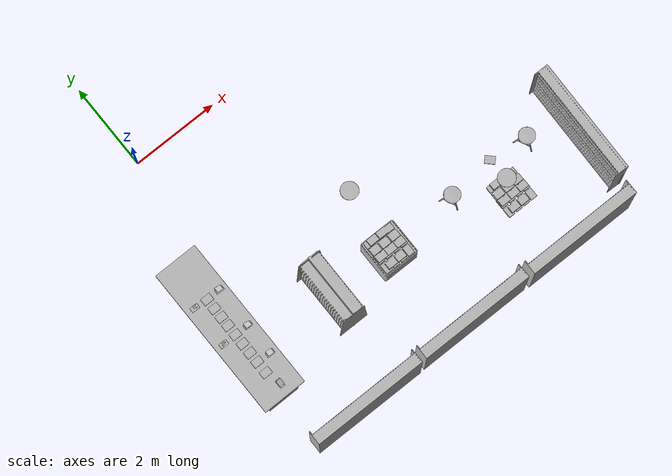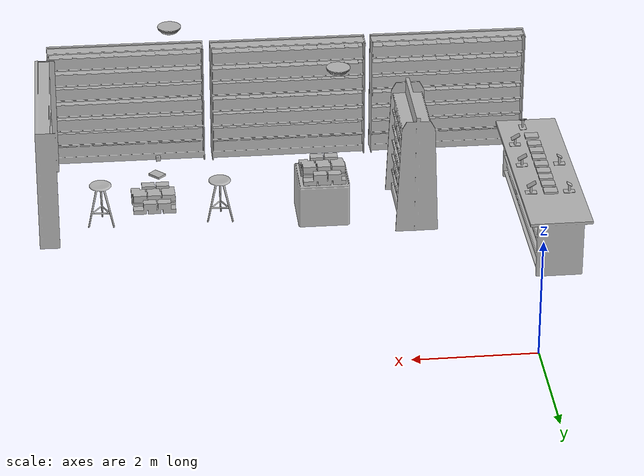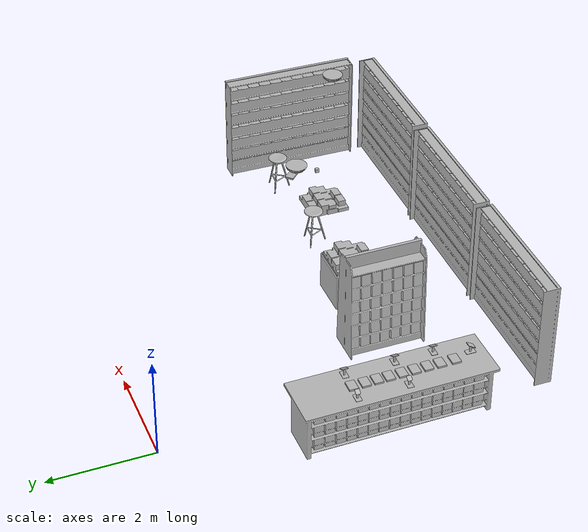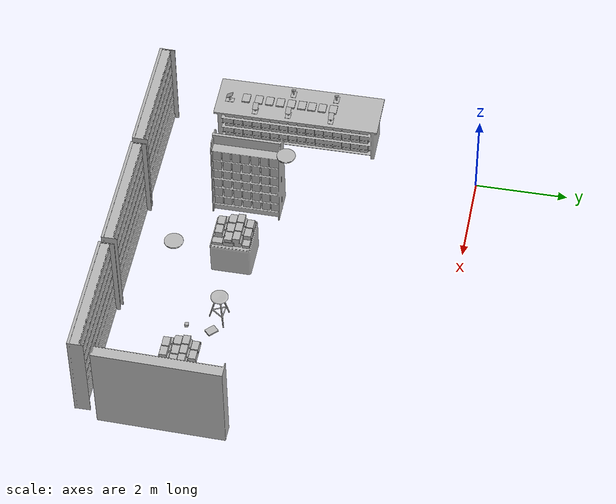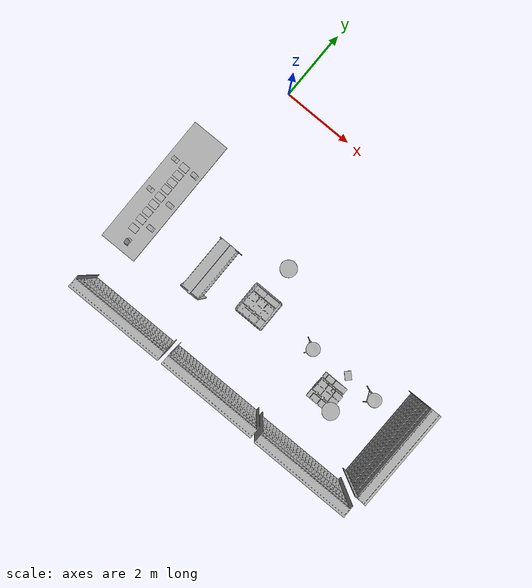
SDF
<sdf version="1.6">
 <world name="default">
  <model name="BookE_01_004">
   <include><uri>model://aws_robomaker_retail_BookE_01</uri></include>
   <pose>5.677231 -4.649203 0.946394 0.000100 0.000006 -2.355752</pose>
  </model>
  <model name="BookE_01_020">
   <include><uri>model://aws_robomaker_retail_BookE_01</uri></include>
   <pose>-0.694312 -3.530823 1.053825 0.000004 -0.000004 -1.573382</pose>
  </model>
  <model name="BookE_01_021">
   <include><uri>model://aws_robomaker_retail_BookE_01</uri></include>
   <pose>-0.694312 -3.760511 1.053825 0.000004 -0.000004 -1.573382</pose>
  </model>
  <model name="BookE_01_022">
   <include><uri>model://aws_robomaker_retail_BookE_01</uri></include>
   <pose>-0.694312 -3.980472 1.053825 0.000004 -0.000004 -1.573382</pose>
  </model>
  <model name="BookE_01_023">
   <include><uri>model://aws_robomaker_retail_BookE_01</uri></include>
   <pose>-0.694312 -4.221891 1.053825 0.000004 -0.000004 -1.573382</pose>
  </model>
  <model name="BookE_01_024">
   <include><uri>model://aws_robomaker_retail_BookE_01</uri></include>
   <pose>-0.694312 -4.461891 1.053825 0.000004 -0.000004 -1.573382</pose>
  </model>
  <model name="BookE_01_025">
   <include><uri>model://aws_robomaker_retail_BookE_01</uri></include>
   <pose>-0.694312 -4.701891 1.053825 0.000004 -0.000004 -1.573382</pose>
  </model>
  <model name="BookE_01_026">
   <include><uri>model://aws_robomaker_retail_BookE_01</uri></include>
   <pose>-0.694312 -4.941891 1.053825 0.000004 -0.000004 -1.573382</pose>
  </model>
  <model name="BookE_01_027">
   <include><uri>model://aws_robomaker_retail_BookE_01</uri></include>
   <pose>-0.694312 -5.221891 1.053825 0.000004 -0.000004 -1.573382</pose>
  </model>
  <model name="BookE_01_028">
   <include><uri>model://aws_robomaker_retail_BookE_01</uri></include>
   <pose>-0.694312 -3.291891 1.053825 0.000004 -0.000004 -1.573382</pose>
  </model>
  <model name="BookD_01_001">
   <include><uri>model://aws_robomaker_retail_BookD_01</uri></include>
   <pose>5.720048 -5.365876 0.022179 0.003452 -0.000001 0.000652</pose>
  </model>
  <model name="BookF_01_002">
   <include><uri>model://aws_robomaker_retail_BookF_01</uri></include>
   <pose>2.902979 -4.760748 0.75826 0.003450 0.000006 -0.002250</pose>
  </model>
  <model name="BookshelfA_01_002">
   <include><uri>model://aws_robomaker_retail_BookshelfA_01</uri></include>
   <pose>1.405153 -4.761649 0.003411 0 0 0</pose>
  </model>
  <model name="BookshelfB_01_003">
   <include><uri>model://aws_robomaker_retail_BookshelfB_01</uri></include>
   <pose>0.522246 -6.971500 0.017947 -0.003292 0.000000 0.000000</pose>
  </model>
  <model name="BookshelfB_01_004">
   <include><uri>model://aws_robomaker_retail_BookshelfB_01</uri></include>
   <pose>3.293386 -6.963665 0.017383 0.000008 -0.000002 0.000000</pose>
  </model>
  <model name="BookshelfB_01_005">
   <include><uri>model://aws_robomaker_retail_BookshelfB_01</uri></include>
   <pose>6.080380 -6.987659 0.017409 0.000174 0.000004 0.000000</pose>
  </model>
  <model name="BookshelfB_01_006">
   <include><uri>model://aws_robomaker_retail_BookshelfB_01</uri></include>
   <pose>7.478331 -5.298296 0.017443 -0.001974 -0.000211 1.554057</pose>
  </model>
  <model name="BookshelfC_01_002">
   <include><uri>model://aws_robomaker_retail_BookshelfC_01</uri></include>
   <pose>2.915449 -4.761712 -0.003455 0.003452 0 0.000014</pose>
  </model>
  <model name="ChairB_01_004">
   <include><uri>model://aws_robomaker_retail_ChairB_01</uri></include>
   <pose>6.6439554 -4.681600 0.0220513 0 0.006174 0.000088</pose>
  </model>
  <model name="ChairB_01_008">
   <include><uri>model://aws_robomaker_retail_ChairB_01</uri></include>
   <pose>4.653303 -4.681600 0.0220513 0 0.006174 0.000088</pose>
  </model>
  <model name="DeskA_01_004">
   <include><uri>model://aws_robomaker_retail_DeskA_01</uri></include>
   <pose>-0.701688 -4.049294 0.014866 0.000000 -0.000000 -1.566097</pose>
  </model>
  <model name="TabletB_01_003">
   <include><uri>model://aws_robomaker_retail_TabletB_01</uri></include>
   <pose>-0.598457 -5.570730 1.184718 0.550862 -0.007302 0.000000</pose>
  </model>
  <model name="TabletB_01_005">
   <include><uri>model://aws_robomaker_retail_TabletB_01</uri></include>
   <pose>-0.378561 -4.954985 1.184718 0.518383 0.023342 1.564514</pose>
  </model>
  <model name="TabletB_01_006">
   <include><uri>model://aws_robomaker_retail_TabletB_01</uri></include>
   <pose>-0.378561 -4.227170 1.184718 0.518383 0.023342 1.564514</pose>
  </model>
  <model name="TabletB_01_007">
   <include><uri>model://aws_robomaker_retail_TabletB_01</uri></include>
   <pose>-0.378561 -3.280550 1.184718 0.518383 0.023342 1.564514</pose>
  </model>
  <model name="Holder_01_001">
   <include><uri>model://aws_robomaker_retail_Holder_01</uri></include>
   <pose>-0.599181 -5.571190 1.037756 0 -0 0</pose>
  </model>
  <model name="Holder_01_013">
   <include><uri>model://aws_robomaker_retail_Holder_01</uri></include>
   <pose>-0.372529 -4.960362 1.037756 0 -0 1.550000</pose>
  </model>
  <model name="Holder_01_014">
   <include><uri>model://aws_robomaker_retail_Holder_01</uri></include>
   <pose>-0.372529 -4.226824 1.037756 0 -0 1.550000</pose>
  </model>
  <model name="Holder_01_015">
   <include><uri>model://aws_robomaker_retail_Holder_01</uri></include>
   <pose>-0.372529 -3.286318 1.037756 0 -0 1.550000</pose>
  </model>
  <model name="Holder_01_017">
   <include><uri>model://aws_robomaker_retail_Holder_01</uri></include>
   <pose>-1.001700 -4.226100 1.037756 0 0 -1.588645</pose>
  </model>
  <model name="Holder_01_018">
   <include><uri>model://aws_robomaker_retail_Holder_01</uri></include>
   <pose>-1.001700 -3.269130 1.037756 0 0 -1.588645</pose>
  </model>
  <model name="LightA_01_001">
   <include><uri>model://aws_robomaker_retail_LightA_01</uri></include>
   <pose>2.774418 -3.628150 3.150329 0 -0 0</pose>
  </model>
  <model name="LightA_01_002">
   <include><uri>model://aws_robomaker_retail_LightA_01</uri></include>
   <pose>5.383991 -5.383710 3.150328 0 -0 0</pose>
  </model>
  <model name="MagicCube_01_001">
   <include><uri>model://aws_robomaker_retail_MagicCube_01</uri></include>
   <pose>5.667560 -5.174908 0.968597 1.559939 -0.000001 -1.555409</pose>
  </model>
 </world>
</sdf>
